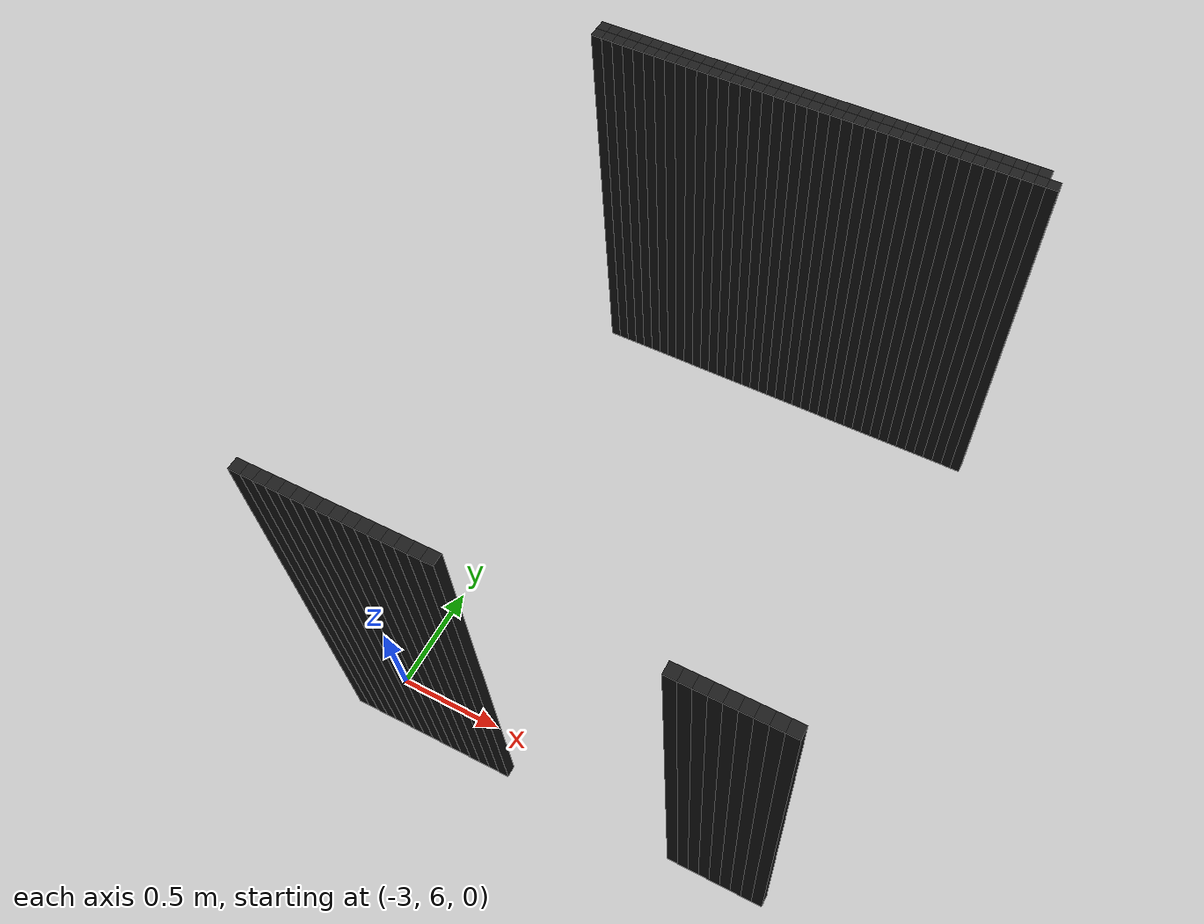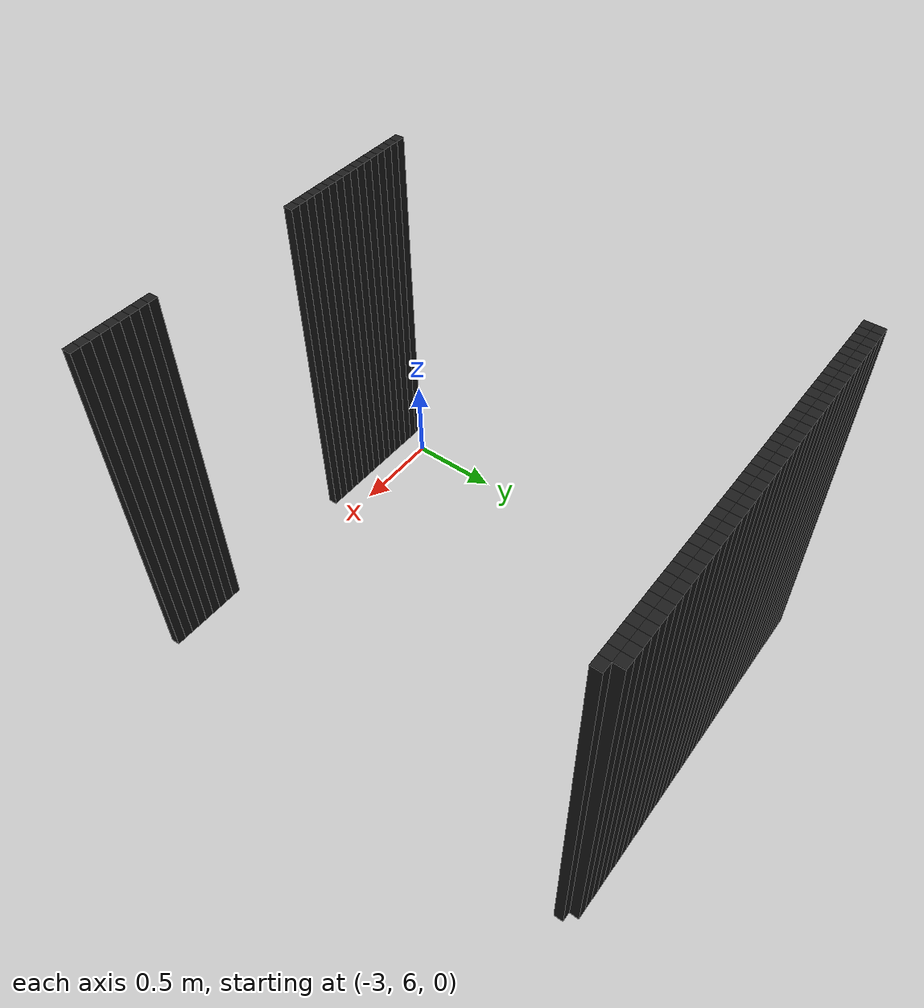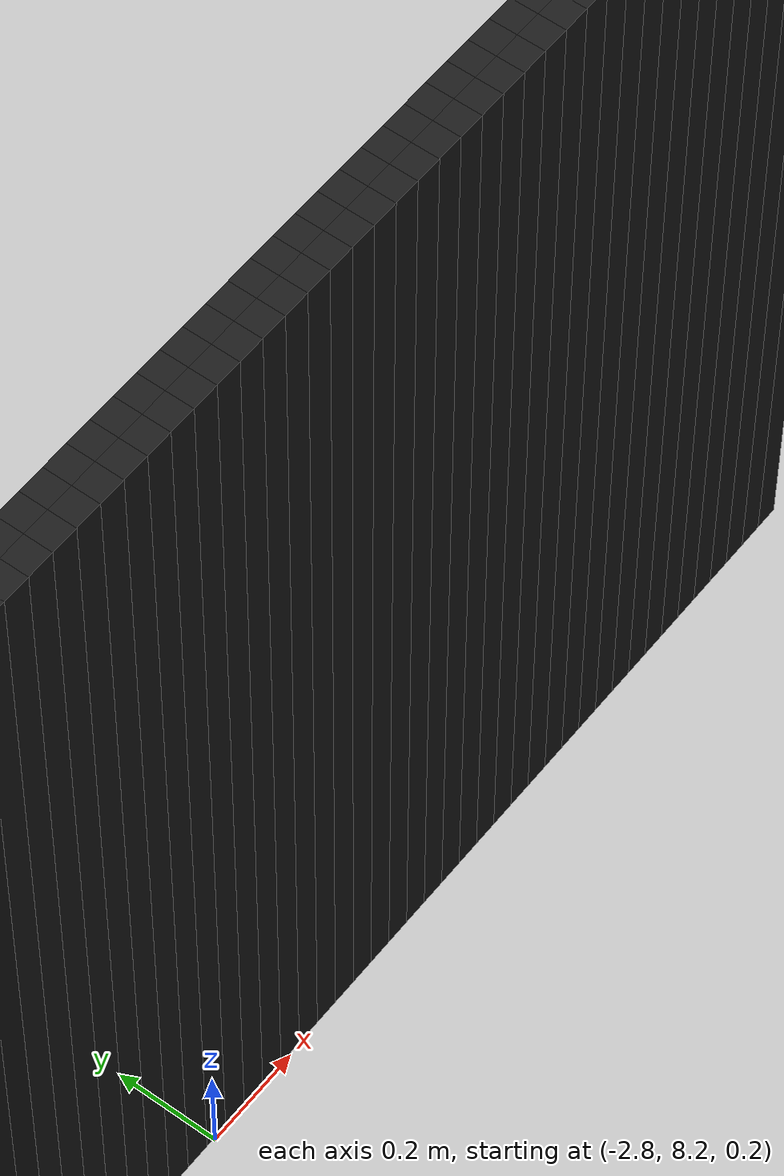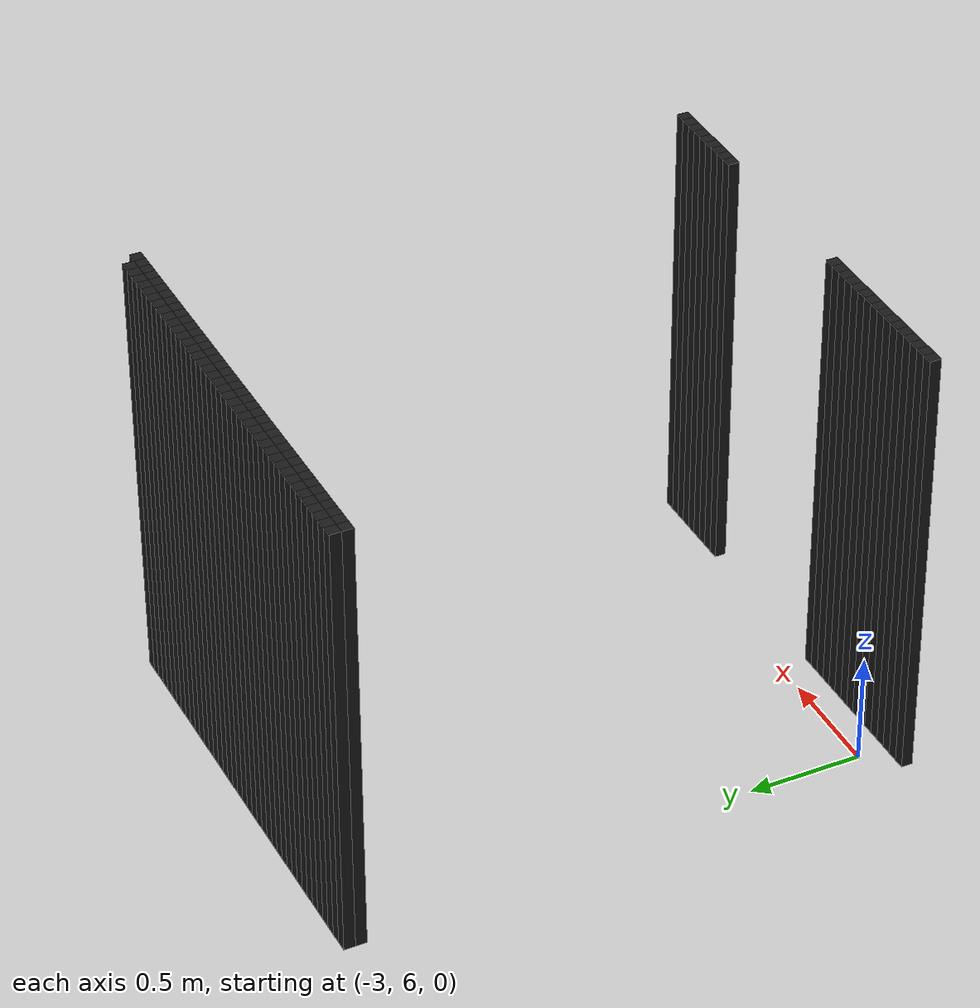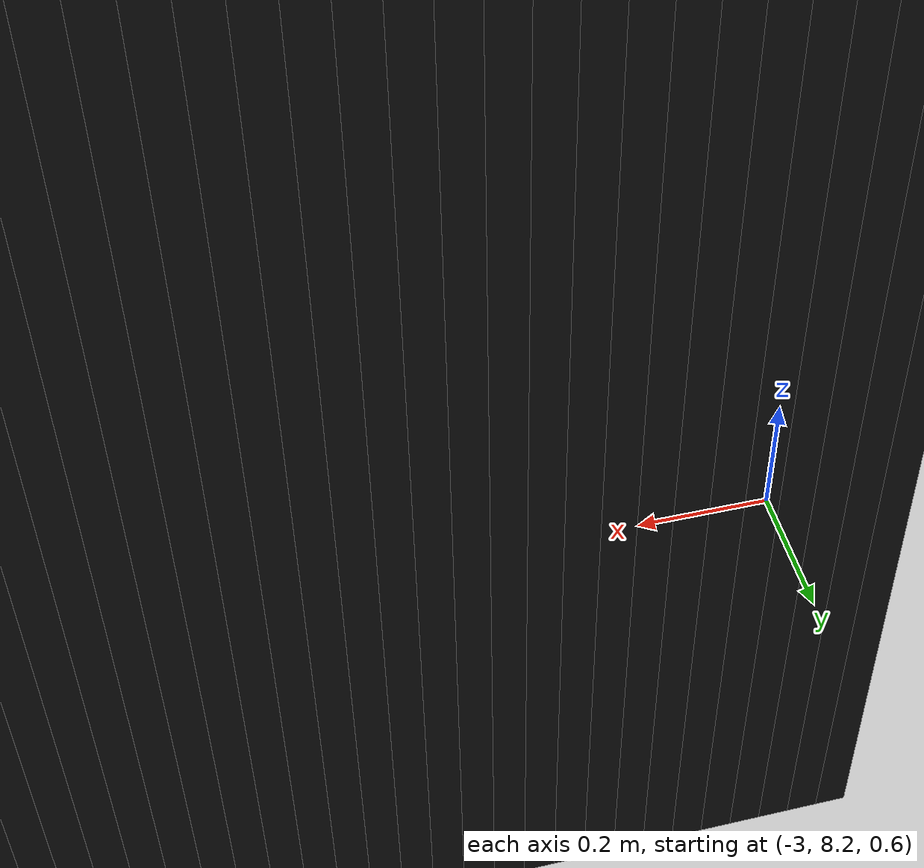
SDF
<sdf version="1.6">
 <model name="obstacle_28_0">
  <pose>-3.1099999999999994 8.350000000000001 1.0 0 0 0</pose>
  <static>true</static>
  <link name="box_link">
   <collision name="box_collision"><geometry><box><size>0.05 0.05 2.0</size></box></geometry></collision>
   <visual name="box_visual">
    <geometry><box><size>0.05 0.05 2.0</size></box></geometry>
    <material><ambient>0 0 0 1</ambient><diffuse>0.1 0.1 0.1 1</diffuse></material>
   </visual>
  </link>
 </model>
 <model name="obstacle_29_0">
  <pose>-3.0599999999999996 8.350000000000001 1.0 0 0 0</pose>
  <static>true</static>
  <link name="box_link">
   <collision name="box_collision"><geometry><box><size>0.05 0.05 2.0</size></box></geometry></collision>
   <visual name="box_visual">
    <geometry><box><size>0.05 0.05 2.0</size></box></geometry>
    <material><ambient>0 0 0 1</ambient><diffuse>0.1 0.1 0.1 1</diffuse></material>
   </visual>
  </link>
 </model>
 <model name="obstacle_30_0">
  <pose>-3.01 8.350000000000001 1.0 0 0 0</pose>
  <static>true</static>
  <link name="box_link">
   <collision name="box_collision"><geometry><box><size>0.05 0.05 2.0</size></box></geometry></collision>
   <visual name="box_visual">
    <geometry><box><size>0.05 0.05 2.0</size></box></geometry>
    <material><ambient>0 0 0 1</ambient><diffuse>0.1 0.1 0.1 1</diffuse></material>
   </visual>
  </link>
 </model>
 <model name="obstacle_31_0">
  <pose>-2.96 8.350000000000001 1.0 0 0 0</pose>
  <static>true</static>
  <link name="box_link">
   <collision name="box_collision"><geometry><box><size>0.05 0.05 2.0</size></box></geometry></collision>
   <visual name="box_visual">
    <geometry><box><size>0.05 0.05 2.0</size></box></geometry>
    <material><ambient>0 0 0 1</ambient><diffuse>0.1 0.1 0.1 1</diffuse></material>
   </visual>
  </link>
 </model>
 <model name="obstacle_32_0">
  <pose>-2.9099999999999997 8.350000000000001 1.0 0 0 0</pose>
  <static>true</static>
  <link name="box_link">
   <collision name="box_collision"><geometry><box><size>0.05 0.05 2.0</size></box></geometry></collision>
   <visual name="box_visual">
    <geometry><box><size>0.05 0.05 2.0</size></box></geometry>
    <material><ambient>0 0 0 1</ambient><diffuse>0.1 0.1 0.1 1</diffuse></material>
   </visual>
  </link>
 </model>
 <model name="obstacle_33_0">
  <pose>-2.8599999999999994 8.350000000000001 1.0 0 0 0</pose>
  <static>true</static>
  <link name="box_link">
   <collision name="box_collision"><geometry><box><size>0.05 0.05 2.0</size></box></geometry></collision>
   <visual name="box_visual">
    <geometry><box><size>0.05 0.05 2.0</size></box></geometry>
    <material><ambient>0 0 0 1</ambient><diffuse>0.1 0.1 0.1 1</diffuse></material>
   </visual>
  </link>
 </model>
 <model name="obstacle_34_0">
  <pose>-2.8099999999999996 8.350000000000001 1.0 0 0 0</pose>
  <static>true</static>
  <link name="box_link">
   <collision name="box_collision"><geometry><box><size>0.05 0.05 2.0</size></box></geometry></collision>
   <visual name="box_visual">
    <geometry><box><size>0.05 0.05 2.0</size></box></geometry>
    <material><ambient>0 0 0 1</ambient><diffuse>0.1 0.1 0.1 1</diffuse></material>
   </visual>
  </link>
 </model>
 <model name="obstacle_35_0">
  <pose>-2.76 8.350000000000001 1.0 0 0 0</pose>
  <static>true</static>
  <link name="box_link">
   <collision name="box_collision"><geometry><box><size>0.05 0.05 2.0</size></box></geometry></collision>
   <visual name="box_visual">
    <geometry><box><size>0.05 0.05 2.0</size></box></geometry>
    <material><ambient>0 0 0 1</ambient><diffuse>0.1 0.1 0.1 1</diffuse></material>
   </visual>
  </link>
 </model>
 <model name="obstacle_36_0">
  <pose>-2.71 8.350000000000001 1.0 0 0 0</pose>
  <static>true</static>
  <link name="box_link">
   <collision name="box_collision"><geometry><box><size>0.05 0.05 2.0</size></box></geometry></collision>
   <visual name="box_visual">
    <geometry><box><size>0.05 0.05 2.0</size></box></geometry>
    <material><ambient>0 0 0 1</ambient><diffuse>0.1 0.1 0.1 1</diffuse></material>
   </visual>
  </link>
 </model>
 <model name="obstacle_37_0">
  <pose>-2.6599999999999997 8.350000000000001 1.0 0 0 0</pose>
  <static>true</static>
  <link name="box_link">
   <collision name="box_collision"><geometry><box><size>0.05 0.05 2.0</size></box></geometry></collision>
   <visual name="box_visual">
    <geometry><box><size>0.05 0.05 2.0</size></box></geometry>
    <material><ambient>0 0 0 1</ambient><diffuse>0.1 0.1 0.1 1</diffuse></material>
   </visual>
  </link>
 </model>
 <model name="obstacle_38_0">
  <pose>-2.6099999999999994 8.350000000000001 1.0 0 0 0</pose>
  <static>true</static>
  <link name="box_link">
   <collision name="box_collision"><geometry><box><size>0.05 0.05 2.0</size></box></geometry></collision>
   <visual name="box_visual">
    <geometry><box><size>0.05 0.05 2.0</size></box></geometry>
    <material><ambient>0 0 0 1</ambient><diffuse>0.1 0.1 0.1 1</diffuse></material>
   </visual>
  </link>
 </model>
 <model name="obstacle_39_0">
  <pose>-2.5599999999999996 8.350000000000001 1.0 0 0 0</pose>
  <static>true</static>
  <link name="box_link">
   <collision name="box_collision"><geometry><box><size>0.05 0.05 2.0</size></box></geometry></collision>
   <visual name="box_visual">
    <geometry><box><size>0.05 0.05 2.0</size></box></geometry>
    <material><ambient>0 0 0 1</ambient><diffuse>0.1 0.1 0.1 1</diffuse></material>
   </visual>
  </link>
 </model>
 <model name="obstacle_40_0">
  <pose>-2.51 8.350000000000001 1.0 0 0 0</pose>
  <static>true</static>
  <link name="box_link">
   <collision name="box_collision"><geometry><box><size>0.05 0.05 2.0</size></box></geometry></collision>
   <visual name="box_visual">
    <geometry><box><size>0.05 0.05 2.0</size></box></geometry>
    <material><ambient>0 0 0 1</ambient><diffuse>0.1 0.1 0.1 1</diffuse></material>
   </visual>
  </link>
 </model>
 <model name="obstacle_41_0">
  <pose>-2.4599999999999995 8.350000000000001 1.0 0 0 0</pose>
  <static>true</static>
  <link name="box_link">
   <collision name="box_collision"><geometry><box><size>0.05 0.05 2.0</size></box></geometry></collision>
   <visual name="box_visual">
    <geometry><box><size>0.05 0.05 2.0</size></box></geometry>
    <material><ambient>0 0 0 1</ambient><diffuse>0.1 0.1 0.1 1</diffuse></material>
   </visual>
  </link>
 </model>
 <model name="obstacle_42_0">
  <pose>-2.4099999999999997 8.350000000000001 1.0 0 0 0</pose>
  <static>true</static>
  <link name="box_link">
   <collision name="box_collision"><geometry><box><size>0.05 0.05 2.0</size></box></geometry></collision>
   <visual name="box_visual">
    <geometry><box><size>0.05 0.05 2.0</size></box></geometry>
    <material><ambient>0 0 0 1</ambient><diffuse>0.1 0.1 0.1 1</diffuse></material>
   </visual>
  </link>
 </model>
 <model name="obstacle_43_0">
  <pose>-2.36 8.350000000000001 1.0 0 0 0</pose>
  <static>true</static>
  <link name="box_link">
   <collision name="box_collision"><geometry><box><size>0.05 0.05 2.0</size></box></geometry></collision>
   <visual name="box_visual">
    <geometry><box><size>0.05 0.05 2.0</size></box></geometry>
    <material><ambient>0 0 0 1</ambient><diffuse>0.1 0.1 0.1 1</diffuse></material>
   </visual>
  </link>
 </model>
 <model name="obstacle_44_0">
  <pose>-2.3099999999999996 8.350000000000001 1.0 0 0 0</pose>
  <static>true</static>
  <link name="box_link">
   <collision name="box_collision"><geometry><box><size>0.05 0.05 2.0</size></box></geometry></collision>
   <visual name="box_visual">
    <geometry><box><size>0.05 0.05 2.0</size></box></geometry>
    <material><ambient>0 0 0 1</ambient><diffuse>0.1 0.1 0.1 1</diffuse></material>
   </visual>
  </link>
 </model>
 <model name="obstacle_45_0">
  <pose>-2.26 8.350000000000001 1.0 0 0 0</pose>
  <static>true</static>
  <link name="box_link">
   <collision name="box_collision"><geometry><box><size>0.05 0.05 2.0</size></box></geometry></collision>
   <visual name="box_visual">
    <geometry><box><size>0.05 0.05 2.0</size></box></geometry>
    <material><ambient>0 0 0 1</ambient><diffuse>0.1 0.1 0.1 1</diffuse></material>
   </visual>
  </link>
 </model>
 <model name="obstacle_46_0">
  <pose>-2.2099999999999995 8.350000000000001 1.0 0 0 0</pose>
  <static>true</static>
  <link name="box_link">
   <collision name="box_collision"><geometry><box><size>0.05 0.05 2.0</size></box></geometry></collision>
   <visual name="box_visual">
    <geometry><box><size>0.05 0.05 2.0</size></box></geometry>
    <material><ambient>0 0 0 1</ambient><diffuse>0.1 0.1 0.1 1</diffuse></material>
   </visual>
  </link>
 </model>
 <model name="obstacle_47_0">
  <pose>-2.1599999999999997 8.350000000000001 1.0 0 0 0</pose>
  <static>true</static>
  <link name="box_link">
   <collision name="box_collision"><geometry><box><size>0.05 0.05 2.0</size></box></geometry></collision>
   <visual name="box_visual">
    <geometry><box><size>0.05 0.05 2.0</size></box></geometry>
    <material><ambient>0 0 0 1</ambient><diffuse>0.1 0.1 0.1 1</diffuse></material>
   </visual>
  </link>
 </model>
 <model name="obstacle_48_0">
  <pose>-2.1099999999999994 8.350000000000001 1.0 0 0 0</pose>
  <static>true</static>
  <link name="box_link">
   <collision name="box_collision"><geometry><box><size>0.05 0.05 2.0</size></box></geometry></collision>
   <visual name="box_visual">
    <geometry><box><size>0.05 0.05 2.0</size></box></geometry>
    <material><ambient>0 0 0 1</ambient><diffuse>0.1 0.1 0.1 1</diffuse></material>
   </visual>
  </link>
 </model>
 <model name="obstacle_49_0">
  <pose>-2.0599999999999996 8.350000000000001 1.0 0 0 0</pose>
  <static>true</static>
  <link name="box_link">
   <collision name="box_collision"><geometry><box><size>0.05 0.05 2.0</size></box></geometry></collision>
   <visual name="box_visual">
    <geometry><box><size>0.05 0.05 2.0</size></box></geometry>
    <material><ambient>0 0 0 1</ambient><diffuse>0.1 0.1 0.1 1</diffuse></material>
   </visual>
  </link>
 </model>
 <model name="obstacle_50_0">
  <pose>-2.01 8.350000000000001 1.0 0 0 0</pose>
  <static>true</static>
  <link name="box_link">
   <collision name="box_collision"><geometry><box><size>0.05 0.05 2.0</size></box></geometry></collision>
   <visual name="box_visual">
    <geometry><box><size>0.05 0.05 2.0</size></box></geometry>
    <material><ambient>0 0 0 1</ambient><diffuse>0.1 0.1 0.1 1</diffuse></material>
   </visual>
  </link>
 </model>
 <model name="obstacle_51_0">
  <pose>-1.9599999999999995 8.350000000000001 1.0 0 0 0</pose>
  <static>true</static>
  <link name="box_link">
   <collision name="box_collision"><geometry><box><size>0.05 0.05 2.0</size></box></geometry></collision>
   <visual name="box_visual">
    <geometry><box><size>0.05 0.05 2.0</size></box></geometry>
    <material><ambient>0 0 0 1</ambient><diffuse>0.1 0.1 0.1 1</diffuse></material>
   </visual>
  </link>
 </model>
 <model name="obstacle_52_0">
  <pose>-1.9099999999999997 8.350000000000001 1.0 0 0 0</pose>
  <static>true</static>
  <link name="box_link">
   <collision name="box_collision"><geometry><box><size>0.05 0.05 2.0</size></box></geometry></collision>
   <visual name="box_visual">
    <geometry><box><size>0.05 0.05 2.0</size></box></geometry>
    <material><ambient>0 0 0 1</ambient><diffuse>0.1 0.1 0.1 1</diffuse></material>
   </visual>
  </link>
 </model>
 <model name="obstacle_53_0">
  <pose>-1.8599999999999994 8.350000000000001 1.0 0 0 0</pose>
  <static>true</static>
  <link name="box_link">
   <collision name="box_collision"><geometry><box><size>0.05 0.05 2.0</size></box></geometry></collision>
   <visual name="box_visual">
    <geometry><box><size>0.05 0.05 2.0</size></box></geometry>
    <material><ambient>0 0 0 1</ambient><diffuse>0.1 0.1 0.1 1</diffuse></material>
   </visual>
  </link>
 </model>
 <model name="obstacle_54_0">
  <pose>-1.8099999999999996 8.350000000000001 1.0 0 0 0</pose>
  <static>true</static>
  <link name="box_link">
   <collision name="box_collision"><geometry><box><size>0.05 0.05 2.0</size></box></geometry></collision>
   <visual name="box_visual">
    <geometry><box><size>0.05 0.05 2.0</size></box></geometry>
    <material><ambient>0 0 0 1</ambient><diffuse>0.1 0.1 0.1 1</diffuse></material>
   </visual>
  </link>
 </model>
 <model name="obstacle_55_0">
  <pose>-1.7599999999999998 8.350000000000001 1.0 0 0 0</pose>
  <static>true</static>
  <link name="box_link">
   <collision name="box_collision"><geometry><box><size>0.05 0.05 2.0</size></box></geometry></collision>
   <visual name="box_visual">
    <geometry><box><size>0.05 0.05 2.0</size></box></geometry>
    <material><ambient>0 0 0 1</ambient><diffuse>0.1 0.1 0.1 1</diffuse></material>
   </visual>
  </link>
 </model>
 <model name="obstacle_56_0">
  <pose>-1.7099999999999995 8.350000000000001 1.0 0 0 0</pose>
  <static>true</static>
  <link name="box_link">
   <collision name="box_collision"><geometry><box><size>0.05 0.05 2.0</size></box></geometry></collision>
   <visual name="box_visual">
    <geometry><box><size>0.05 0.05 2.0</size></box></geometry>
    <material><ambient>0 0 0 1</ambient><diffuse>0.1 0.1 0.1 1</diffuse></material>
   </visual>
  </link>
 </model>
 <model name="obstacle_57_0">
  <pose>-1.6599999999999997 8.350000000000001 1.0 0 0 0</pose>
  <static>true</static>
  <link name="box_link">
   <collision name="box_collision"><geometry><box><size>0.05 0.05 2.0</size></box></geometry></collision>
   <visual name="box_visual">
    <geometry><box><size>0.05 0.05 2.0</size></box></geometry>
    <material><ambient>0 0 0 1</ambient><diffuse>0.1 0.1 0.1 1</diffuse></material>
   </visual>
  </link>
 </model>
 <model name="obstacle_58_0">
  <pose>-1.6099999999999994 8.350000000000001 1.0 0 0 0</pose>
  <static>true</static>
  <link name="box_link">
   <collision name="box_collision"><geometry><box><size>0.05 0.05 2.0</size></box></geometry></collision>
   <visual name="box_visual">
    <geometry><box><size>0.05 0.05 2.0</size></box></geometry>
    <material><ambient>0 0 0 1</ambient><diffuse>0.1 0.1 0.1 1</diffuse></material>
   </visual>
  </link>
 </model>
 <model name="obstacle_59_0">
  <pose>-1.5599999999999996 8.350000000000001 1.0 0 0 0</pose>
  <static>true</static>
  <link name="box_link">
   <collision name="box_collision"><geometry><box><size>0.05 0.05 2.0</size></box></geometry></collision>
   <visual name="box_visual">
    <geometry><box><size>0.05 0.05 2.0</size></box></geometry>
    <material><ambient>0 0 0 1</ambient><diffuse>0.1 0.1 0.1 1</diffuse></material>
   </visual>
  </link>
 </model>
 <model name="obstacle_60_0">
  <pose>-1.5099999999999998 8.350000000000001 1.0 0 0 0</pose>
  <static>true</static>
  <link name="box_link">
   <collision name="box_collision"><geometry><box><size>0.05 0.05 2.0</size></box></geometry></collision>
   <visual name="box_visual">
    <geometry><box><size>0.05 0.05 2.0</size></box></geometry>
    <material><ambient>0 0 0 1</ambient><diffuse>0.1 0.1 0.1 1</diffuse></material>
   </visual>
  </link>
 </model>
 <model name="obstacle_61_0">
  <pose>-1.4599999999999995 8.350000000000001 1.0 0 0 0</pose>
  <static>true</static>
  <link name="box_link">
   <collision name="box_collision"><geometry><box><size>0.05 0.05 2.0</size></box></geometry></collision>
   <visual name="box_visual">
    <geometry><box><size>0.05 0.05 2.0</size></box></geometry>
    <material><ambient>0 0 0 1</ambient><diffuse>0.1 0.1 0.1 1</diffuse></material>
   </visual>
  </link>
 </model>
 <model name="obstacle_62_0">
  <pose>-1.4099999999999997 8.350000000000001 1.0 0 0 0</pose>
  <static>true</static>
  <link name="box_link">
   <collision name="box_collision"><geometry><box><size>0.05 0.05 2.0</size></box></geometry></collision>
   <visual name="box_visual">
    <geometry><box><size>0.05 0.05 2.0</size></box></geometry>
    <material><ambient>0 0 0 1</ambient><diffuse>0.1 0.1 0.1 1</diffuse></material>
   </visual>
  </link>
 </model>
 <model name="obstacle_63_0">
  <pose>-1.3599999999999994 8.350000000000001 1.0 0 0 0</pose>
  <static>true</static>
  <link name="box_link">
   <collision name="box_collision"><geometry><box><size>0.05 0.05 2.0</size></box></geometry></collision>
   <visual name="box_visual">
    <geometry><box><size>0.05 0.05 2.0</size></box></geometry>
    <material><ambient>0 0 0 1</ambient><diffuse>0.1 0.1 0.1 1</diffuse></material>
   </visual>
  </link>
 </model>
 <model name="obstacle_64_0">
  <pose>-1.3099999999999996 8.350000000000001 1.0 0 0 0</pose>
  <static>true</static>
  <link name="box_link">
   <collision name="box_collision"><geometry><box><size>0.05 0.05 2.0</size></box></geometry></collision>
   <visual name="box_visual">
    <geometry><box><size>0.05 0.05 2.0</size></box></geometry>
    <material><ambient>0 0 0 1</ambient><diffuse>0.1 0.1 0.1 1</diffuse></material>
   </visual>
  </link>
 </model>
 <model name="obstacle_65_0">
  <pose>-1.2599999999999998 8.350000000000001 1.0 0 0 0</pose>
  <static>true</static>
  <link name="box_link">
   <collision name="box_collision"><geometry><box><size>0.05 0.05 2.0</size></box></geometry></collision>
   <visual name="box_visual">
    <geometry><box><size>0.05 0.05 2.0</size></box></geometry>
    <material><ambient>0 0 0 1</ambient><diffuse>0.1 0.1 0.1 1</diffuse></material>
   </visual>
  </link>
 </model>
 <model name="obstacle_66_0">
  <pose>-1.2099999999999995 8.350000000000001 1.0 0 0 0</pose>
  <static>true</static>
  <link name="box_link">
   <collision name="box_collision"><geometry><box><size>0.05 0.05 2.0</size></box></geometry></collision>
   <visual name="box_visual">
    <geometry><box><size>0.05 0.05 2.0</size></box></geometry>
    <material><ambient>0 0 0 1</ambient><diffuse>0.1 0.1 0.1 1</diffuse></material>
   </visual>
  </link>
 </model>
 <model name="obstacle_67_0">
  <pose>-1.1599999999999997 8.350000000000001 1.0 0 0 0</pose>
  <static>true</static>
  <link name="box_link">
   <collision name="box_collision"><geometry><box><size>0.05 0.05 2.0</size></box></geometry></collision>
   <visual name="box_visual">
    <geometry><box><size>0.05 0.05 2.0</size></box></geometry>
    <material><ambient>0 0 0 1</ambient><diffuse>0.1 0.1 0.1 1</diffuse></material>
   </visual>
  </link>
 </model>
 <model name="obstacle_28_1">
  <pose>-3.1099999999999994 8.3 1.0 0 0 0</pose>
  <static>true</static>
  <link name="box_link">
   <collision name="box_collision"><geometry><box><size>0.05 0.05 2.0</size></box></geometry></collision>
   <visual name="box_visual">
    <geometry><box><size>0.05 0.05 2.0</size></box></geometry>
    <material><ambient>0 0 0 1</ambient><diffuse>0.1 0.1 0.1 1</diffuse></material>
   </visual>
  </link>
 </model>
 <model name="obstacle_29_1">
  <pose>-3.0599999999999996 8.3 1.0 0 0 0</pose>
  <static>true</static>
  <link name="box_link">
   <collision name="box_collision"><geometry><box><size>0.05 0.05 2.0</size></box></geometry></collision>
   <visual name="box_visual">
    <geometry><box><size>0.05 0.05 2.0</size></box></geometry>
    <material><ambient>0 0 0 1</ambient><diffuse>0.1 0.1 0.1 1</diffuse></material>
   </visual>
  </link>
 </model>
 <model name="obstacle_30_1">
  <pose>-3.01 8.3 1.0 0 0 0</pose>
  <static>true</static>
  <link name="box_link">
   <collision name="box_collision"><geometry><box><size>0.05 0.05 2.0</size></box></geometry></collision>
   <visual name="box_visual">
    <geometry><box><size>0.05 0.05 2.0</size></box></geometry>
    <material><ambient>0 0 0 1</ambient><diffuse>0.1 0.1 0.1 1</diffuse></material>
   </visual>
  </link>
 </model>
 <model name="obstacle_31_1">
  <pose>-2.96 8.3 1.0 0 0 0</pose>
  <static>true</static>
  <link name="box_link">
   <collision name="box_collision"><geometry><box><size>0.05 0.05 2.0</size></box></geometry></collision>
   <visual name="box_visual">
    <geometry><box><size>0.05 0.05 2.0</size></box></geometry>
    <material><ambient>0 0 0 1</ambient><diffuse>0.1 0.1 0.1 1</diffuse></material>
   </visual>
  </link>
 </model>
 <model name="obstacle_32_1">
  <pose>-2.9099999999999997 8.3 1.0 0 0 0</pose>
  <static>true</static>
  <link name="box_link">
   <collision name="box_collision"><geometry><box><size>0.05 0.05 2.0</size></box></geometry></collision>
   <visual name="box_visual">
    <geometry><box><size>0.05 0.05 2.0</size></box></geometry>
    <material><ambient>0 0 0 1</ambient><diffuse>0.1 0.1 0.1 1</diffuse></material>
   </visual>
  </link>
 </model>
 <model name="obstacle_33_1">
  <pose>-2.8599999999999994 8.3 1.0 0 0 0</pose>
  <static>true</static>
  <link name="box_link">
   <collision name="box_collision"><geometry><box><size>0.05 0.05 2.0</size></box></geometry></collision>
   <visual name="box_visual">
    <geometry><box><size>0.05 0.05 2.0</size></box></geometry>
    <material><ambient>0 0 0 1</ambient><diffuse>0.1 0.1 0.1 1</diffuse></material>
   </visual>
  </link>
 </model>
 <model name="obstacle_34_1">
  <pose>-2.8099999999999996 8.3 1.0 0 0 0</pose>
  <static>true</static>
  <link name="box_link">
   <collision name="box_collision"><geometry><box><size>0.05 0.05 2.0</size></box></geometry></collision>
   <visual name="box_visual">
    <geometry><box><size>0.05 0.05 2.0</size></box></geometry>
    <material><ambient>0 0 0 1</ambient><diffuse>0.1 0.1 0.1 1</diffuse></material>
   </visual>
  </link>
 </model>
 <model name="obstacle_35_1">
  <pose>-2.76 8.3 1.0 0 0 0</pose>
  <static>true</static>
  <link name="box_link">
   <collision name="box_collision"><geometry><box><size>0.05 0.05 2.0</size></box></geometry></collision>
   <visual name="box_visual">
    <geometry><box><size>0.05 0.05 2.0</size></box></geometry>
    <material><ambient>0 0 0 1</ambient><diffuse>0.1 0.1 0.1 1</diffuse></material>
   </visual>
  </link>
 </model>
 <model name="obstacle_36_1">
  <pose>-2.71 8.3 1.0 0 0 0</pose>
  <static>true</static>
  <link name="box_link">
   <collision name="box_collision"><geometry><box><size>0.05 0.05 2.0</size></box></geometry></collision>
   <visual name="box_visual">
    <geometry><box><size>0.05 0.05 2.0</size></box></geometry>
    <material><ambient>0 0 0 1</ambient><diffuse>0.1 0.1 0.1 1</diffuse></material>
   </visual>
  </link>
 </model>
 <model name="obstacle_37_1">
  <pose>-2.6599999999999997 8.3 1.0 0 0 0</pose>
  <static>true</static>
  <link name="box_link">
   <collision name="box_collision"><geometry><box><size>0.05 0.05 2.0</size></box></geometry></collision>
   <visual name="box_visual">
    <geometry><box><size>0.05 0.05 2.0</size></box></geometry>
    <material><ambient>0 0 0 1</ambient><diffuse>0.1 0.1 0.1 1</diffuse></material>
   </visual>
  </link>
 </model>
 <model name="obstacle_38_1">
  <pose>-2.6099999999999994 8.3 1.0 0 0 0</pose>
  <static>true</static>
  <link name="box_link">
   <collision name="box_collision"><geometry><box><size>0.05 0.05 2.0</size></box></geometry></collision>
   <visual name="box_visual">
    <geometry><box><size>0.05 0.05 2.0</size></box></geometry>
    <material><ambient>0 0 0 1</ambient><diffuse>0.1 0.1 0.1 1</diffuse></material>
   </visual>
  </link>
 </model>
 <model name="obstacle_39_1">
  <pose>-2.5599999999999996 8.3 1.0 0 0 0</pose>
  <static>true</static>
  <link name="box_link">
   <collision name="box_collision"><geometry><box><size>0.05 0.05 2.0</size></box></geometry></collision>
   <visual name="box_visual">
    <geometry><box><size>0.05 0.05 2.0</size></box></geometry>
    <material><ambient>0 0 0 1</ambient><diffuse>0.1 0.1 0.1 1</diffuse></material>
   </visual>
  </link>
 </model>
 <model name="obstacle_40_1">
  <pose>-2.51 8.3 1.0 0 0 0</pose>
  <static>true</static>
  <link name="box_link">
   <collision name="box_collision"><geometry><box><size>0.05 0.05 2.0</size></box></geometry></collision>
   <visual name="box_visual">
    <geometry><box><size>0.05 0.05 2.0</size></box></geometry>
    <material><ambient>0 0 0 1</ambient><diffuse>0.1 0.1 0.1 1</diffuse></material>
   </visual>
  </link>
 </model>
 <model name="obstacle_41_1">
  <pose>-2.4599999999999995 8.3 1.0 0 0 0</pose>
  <static>true</static>
  <link name="box_link">
   <collision name="box_collision"><geometry><box><size>0.05 0.05 2.0</size></box></geometry></collision>
   <visual name="box_visual">
    <geometry><box><size>0.05 0.05 2.0</size></box></geometry>
    <material><ambient>0 0 0 1</ambient><diffuse>0.1 0.1 0.1 1</diffuse></material>
   </visual>
  </link>
 </model>
 <model name="obstacle_42_1">
  <pose>-2.4099999999999997 8.3 1.0 0 0 0</pose>
  <static>true</static>
  <link name="box_link">
   <collision name="box_collision"><geometry><box><size>0.05 0.05 2.0</size></box></geometry></collision>
   <visual name="box_visual">
    <geometry><box><size>0.05 0.05 2.0</size></box></geometry>
    <material><ambient>0 0 0 1</ambient><diffuse>0.1 0.1 0.1 1</diffuse></material>
   </visual>
  </link>
 </model>
 <model name="obstacle_43_1">
  <pose>-2.36 8.3 1.0 0 0 0</pose>
  <static>true</static>
  <link name="box_link">
   <collision name="box_collision"><geometry><box><size>0.05 0.05 2.0</size></box></geometry></collision>
   <visual name="box_visual">
    <geometry><box><size>0.05 0.05 2.0</size></box></geometry>
    <material><ambient>0 0 0 1</ambient><diffuse>0.1 0.1 0.1 1</diffuse></material>
   </visual>
  </link>
 </model>
 <model name="obstacle_44_1">
  <pose>-2.3099999999999996 8.3 1.0 0 0 0</pose>
  <static>true</static>
  <link name="box_link">
   <collision name="box_collision"><geometry><box><size>0.05 0.05 2.0</size></box></geometry></collision>
   <visual name="box_visual">
    <geometry><box><size>0.05 0.05 2.0</size></box></geometry>
    <material><ambient>0 0 0 1</ambient><diffuse>0.1 0.1 0.1 1</diffuse></material>
   </visual>
  </link>
 </model>
 <model name="obstacle_45_1">
  <pose>-2.26 8.3 1.0 0 0 0</pose>
  <static>true</static>
  <link name="box_link">
   <collision name="box_collision"><geometry><box><size>0.05 0.05 2.0</size></box></geometry></collision>
   <visual name="box_visual">
    <geometry><box><size>0.05 0.05 2.0</size></box></geometry>
    <material><ambient>0 0 0 1</ambient><diffuse>0.1 0.1 0.1 1</diffuse></material>
   </visual>
  </link>
 </model>
 <model name="obstacle_46_1">
  <pose>-2.2099999999999995 8.3 1.0 0 0 0</pose>
  <static>true</static>
  <link name="box_link">
   <collision name="box_collision"><geometry><box><size>0.05 0.05 2.0</size></box></geometry></collision>
   <visual name="box_visual">
    <geometry><box><size>0.05 0.05 2.0</size></box></geometry>
    <material><ambient>0 0 0 1</ambient><diffuse>0.1 0.1 0.1 1</diffuse></material>
   </visual>
  </link>
 </model>
 <model name="obstacle_47_1">
  <pose>-2.1599999999999997 8.3 1.0 0 0 0</pose>
  <static>true</static>
  <link name="box_link">
   <collision name="box_collision"><geometry><box><size>0.05 0.05 2.0</size></box></geometry></collision>
   <visual name="box_visual">
    <geometry><box><size>0.05 0.05 2.0</size></box></geometry>
    <material><ambient>0 0 0 1</ambient><diffuse>0.1 0.1 0.1 1</diffuse></material>
   </visual>
  </link>
 </model>
 <model name="obstacle_48_1">
  <pose>-2.1099999999999994 8.3 1.0 0 0 0</pose>
  <static>true</static>
  <link name="box_link">
   <collision name="box_collision"><geometry><box><size>0.05 0.05 2.0</size></box></geometry></collision>
   <visual name="box_visual">
    <geometry><box><size>0.05 0.05 2.0</size></box></geometry>
    <material><ambient>0 0 0 1</ambient><diffuse>0.1 0.1 0.1 1</diffuse></material>
   </visual>
  </link>
 </model>
 <model name="obstacle_49_1">
  <pose>-2.0599999999999996 8.3 1.0 0 0 0</pose>
  <static>true</static>
  <link name="box_link">
   <collision name="box_collision"><geometry><box><size>0.05 0.05 2.0</size></box></geometry></collision>
   <visual name="box_visual">
    <geometry><box><size>0.05 0.05 2.0</size></box></geometry>
    <material><ambient>0 0 0 1</ambient><diffuse>0.1 0.1 0.1 1</diffuse></material>
   </visual>
  </link>
 </model>
 <model name="obstacle_50_1">
  <pose>-2.01 8.3 1.0 0 0 0</pose>
  <static>true</static>
  <link name="box_link">
   <collision name="box_collision"><geometry><box><size>0.05 0.05 2.0</size></box></geometry></collision>
   <visual name="box_visual">
    <geometry><box><size>0.05 0.05 2.0</size></box></geometry>
    <material><ambient>0 0 0 1</ambient><diffuse>0.1 0.1 0.1 1</diffuse></material>
   </visual>
  </link>
 </model>
 <model name="obstacle_51_1">
  <pose>-1.9599999999999995 8.3 1.0 0 0 0</pose>
  <static>true</static>
  <link name="box_link">
   <collision name="box_collision"><geometry><box><size>0.05 0.05 2.0</size></box></geometry></collision>
   <visual name="box_visual">
    <geometry><box><size>0.05 0.05 2.0</size></box></geometry>
    <material><ambient>0 0 0 1</ambient><diffuse>0.1 0.1 0.1 1</diffuse></material>
   </visual>
  </link>
 </model>
 <model name="obstacle_52_1">
  <pose>-1.9099999999999997 8.3 1.0 0 0 0</pose>
  <static>true</static>
  <link name="box_link">
   <collision name="box_collision"><geometry><box><size>0.05 0.05 2.0</size></box></geometry></collision>
   <visual name="box_visual">
    <geometry><box><size>0.05 0.05 2.0</size></box></geometry>
    <material><ambient>0 0 0 1</ambient><diffuse>0.1 0.1 0.1 1</diffuse></material>
   </visual>
  </link>
 </model>
 <model name="obstacle_53_1">
  <pose>-1.8599999999999994 8.3 1.0 0 0 0</pose>
  <static>true</static>
  <link name="box_link">
   <collision name="box_collision"><geometry><box><size>0.05 0.05 2.0</size></box></geometry></collision>
   <visual name="box_visual">
    <geometry><box><size>0.05 0.05 2.0</size></box></geometry>
    <material><ambient>0 0 0 1</ambient><diffuse>0.1 0.1 0.1 1</diffuse></material>
   </visual>
  </link>
 </model>
 <model name="obstacle_54_1">
  <pose>-1.8099999999999996 8.3 1.0 0 0 0</pose>
  <static>true</static>
  <link name="box_link">
   <collision name="box_collision"><geometry><box><size>0.05 0.05 2.0</size></box></geometry></collision>
   <visual name="box_visual">
    <geometry><box><size>0.05 0.05 2.0</size></box></geometry>
    <material><ambient>0 0 0 1</ambient><diffuse>0.1 0.1 0.1 1</diffuse></material>
   </visual>
  </link>
 </model>
 <model name="obstacle_55_1">
  <pose>-1.7599999999999998 8.3 1.0 0 0 0</pose>
  <static>true</static>
  <link name="box_link">
   <collision name="box_collision"><geometry><box><size>0.05 0.05 2.0</size></box></geometry></collision>
   <visual name="box_visual">
    <geometry><box><size>0.05 0.05 2.0</size></box></geometry>
    <material><ambient>0 0 0 1</ambient><diffuse>0.1 0.1 0.1 1</diffuse></material>
   </visual>
  </link>
 </model>
 <model name="obstacle_56_1">
  <pose>-1.7099999999999995 8.3 1.0 0 0 0</pose>
  <static>true</static>
  <link name="box_link">
   <collision name="box_collision"><geometry><box><size>0.05 0.05 2.0</size></box></geometry></collision>
   <visual name="box_visual">
    <geometry><box><size>0.05 0.05 2.0</size></box></geometry>
    <material><ambient>0 0 0 1</ambient><diffuse>0.1 0.1 0.1 1</diffuse></material>
   </visual>
  </link>
 </model>
 <model name="obstacle_57_1">
  <pose>-1.6599999999999997 8.3 1.0 0 0 0</pose>
  <static>true</static>
  <link name="box_link">
   <collision name="box_collision"><geometry><box><size>0.05 0.05 2.0</size></box></geometry></collision>
   <visual name="box_visual">
    <geometry><box><size>0.05 0.05 2.0</size></box></geometry>
    <material><ambient>0 0 0 1</ambient><diffuse>0.1 0.1 0.1 1</diffuse></material>
   </visual>
  </link>
 </model>
 <model name="obstacle_58_1">
  <pose>-1.6099999999999994 8.3 1.0 0 0 0</pose>
  <static>true</static>
  <link name="box_link">
   <collision name="box_collision"><geometry><box><size>0.05 0.05 2.0</size></box></geometry></collision>
   <visual name="box_visual">
    <geometry><box><size>0.05 0.05 2.0</size></box></geometry>
    <material><ambient>0 0 0 1</ambient><diffuse>0.1 0.1 0.1 1</diffuse></material>
   </visual>
  </link>
 </model>
 <model name="obstacle_59_1">
  <pose>-1.5599999999999996 8.3 1.0 0 0 0</pose>
  <static>true</static>
  <link name="box_link">
   <collision name="box_collision"><geometry><box><size>0.05 0.05 2.0</size></box></geometry></collision>
   <visual name="box_visual">
    <geometry><box><size>0.05 0.05 2.0</size></box></geometry>
    <material><ambient>0 0 0 1</ambient><diffuse>0.1 0.1 0.1 1</diffuse></material>
   </visual>
  </link>
 </model>
 <model name="obstacle_60_1">
  <pose>-1.5099999999999998 8.3 1.0 0 0 0</pose>
  <static>true</static>
  <link name="box_link">
   <collision name="box_collision"><geometry><box><size>0.05 0.05 2.0</size></box></geometry></collision>
   <visual name="box_visual">
    <geometry><box><size>0.05 0.05 2.0</size></box></geometry>
    <material><ambient>0 0 0 1</ambient><diffuse>0.1 0.1 0.1 1</diffuse></material>
   </visual>
  </link>
 </model>
 <model name="obstacle_61_1">
  <pose>-1.4599999999999995 8.3 1.0 0 0 0</pose>
  <static>true</static>
  <link name="box_link">
   <collision name="box_collision"><geometry><box><size>0.05 0.05 2.0</size></box></geometry></collision>
   <visual name="box_visual">
    <geometry><box><size>0.05 0.05 2.0</size></box></geometry>
    <material><ambient>0 0 0 1</ambient><diffuse>0.1 0.1 0.1 1</diffuse></material>
   </visual>
  </link>
 </model>
 <model name="obstacle_62_1">
  <pose>-1.4099999999999997 8.3 1.0 0 0 0</pose>
  <static>true</static>
  <link name="box_link">
   <collision name="box_collision"><geometry><box><size>0.05 0.05 2.0</size></box></geometry></collision>
   <visual name="box_visual">
    <geometry><box><size>0.05 0.05 2.0</size></box></geometry>
    <material><ambient>0 0 0 1</ambient><diffuse>0.1 0.1 0.1 1</diffuse></material>
   </visual>
  </link>
 </model>
 <model name="obstacle_63_1">
  <pose>-1.3599999999999994 8.3 1.0 0 0 0</pose>
  <static>true</static>
  <link name="box_link">
   <collision name="box_collision"><geometry><box><size>0.05 0.05 2.0</size></box></geometry></collision>
   <visual name="box_visual">
    <geometry><box><size>0.05 0.05 2.0</size></box></geometry>
    <material><ambient>0 0 0 1</ambient><diffuse>0.1 0.1 0.1 1</diffuse></material>
   </visual>
  </link>
 </model>
 <model name="obstacle_64_1">
  <pose>-1.3099999999999996 8.3 1.0 0 0 0</pose>
  <static>true</static>
  <link name="box_link">
   <collision name="box_collision"><geometry><box><size>0.05 0.05 2.0</size></box></geometry></collision>
   <visual name="box_visual">
    <geometry><box><size>0.05 0.05 2.0</size></box></geometry>
    <material><ambient>0 0 0 1</ambient><diffuse>0.1 0.1 0.1 1</diffuse></material>
   </visual>
  </link>
 </model>
 <model name="obstacle_65_1">
  <pose>-1.2599999999999998 8.3 1.0 0 0 0</pose>
  <static>true</static>
  <link name="box_link">
   <collision name="box_collision"><geometry><box><size>0.05 0.05 2.0</size></box></geometry></collision>
   <visual name="box_visual">
    <geometry><box><size>0.05 0.05 2.0</size></box></geometry>
    <material><ambient>0 0 0 1</ambient><diffuse>0.1 0.1 0.1 1</diffuse></material>
   </visual>
  </link>
 </model>
 <model name="obstacle_66_1">
  <pose>-1.2099999999999995 8.3 1.0 0 0 0</pose>
  <static>true</static>
  <link name="box_link">
   <collision name="box_collision"><geometry><box><size>0.05 0.05 2.0</size></box></geometry></collision>
   <visual name="box_visual">
    <geometry><box><size>0.05 0.05 2.0</size></box></geometry>
    <material><ambient>0 0 0 1</ambient><diffuse>0.1 0.1 0.1 1</diffuse></material>
   </visual>
  </link>
 </model>
 <model name="obstacle_67_1">
  <pose>-1.1599999999999997 8.3 1.0 0 0 0</pose>
  <static>true</static>
  <link name="box_link">
   <collision name="box_collision"><geometry><box><size>0.05 0.05 2.0</size></box></geometry></collision>
   <visual name="box_visual">
    <geometry><box><size>0.05 0.05 2.0</size></box></geometry>
    <material><ambient>0 0 0 1</ambient><diffuse>0.1 0.1 0.1 1</diffuse></material>
   </visual>
  </link>
 </model>
 <model name="obstacle_68_1">
  <pose>-1.1099999999999994 8.3 1.0 0 0 0</pose>
  <static>true</static>
  <link name="box_link">
   <collision name="box_collision"><geometry><box><size>0.05 0.05 2.0</size></box></geometry></collision>
   <visual name="box_visual">
    <geometry><box><size>0.05 0.05 2.0</size></box></geometry>
    <material><ambient>0 0 0 1</ambient><diffuse>0.1 0.1 0.1 1</diffuse></material>
   </visual>
  </link>
 </model>
 <model name="obstacle_28_50">
  <pose>-3.1099999999999994 5.8500000000000005 1.0 0 0 0</pose>
  <static>true</static>
  <link name="box_link">
   <collision name="box_collision"><geometry><box><size>0.05 0.05 2.0</size></box></geometry></collision>
   <visual name="box_visual">
    <geometry><box><size>0.05 0.05 2.0</size></box></geometry>
    <material><ambient>0 0 0 1</ambient><diffuse>0.1 0.1 0.1 1</diffuse></material>
   </visual>
  </link>
 </model>
 <model name="obstacle_29_50">
  <pose>-3.0599999999999996 5.8500000000000005 1.0 0 0 0</pose>
  <static>true</static>
  <link name="box_link">
   <collision name="box_collision"><geometry><box><size>0.05 0.05 2.0</size></box></geometry></collision>
   <visual name="box_visual">
    <geometry><box><size>0.05 0.05 2.0</size></box></geometry>
    <material><ambient>0 0 0 1</ambient><diffuse>0.1 0.1 0.1 1</diffuse></material>
   </visual>
  </link>
 </model>
 <model name="obstacle_30_50">
  <pose>-3.01 5.8500000000000005 1.0 0 0 0</pose>
  <static>true</static>
  <link name="box_link">
   <collision name="box_collision"><geometry><box><size>0.05 0.05 2.0</size></box></geometry></collision>
   <visual name="box_visual">
    <geometry><box><size>0.05 0.05 2.0</size></box></geometry>
    <material><ambient>0 0 0 1</ambient><diffuse>0.1 0.1 0.1 1</diffuse></material>
   </visual>
  </link>
 </model>
 <model name="obstacle_31_50">
  <pose>-2.96 5.8500000000000005 1.0 0 0 0</pose>
  <static>true</static>
  <link name="box_link">
   <collision name="box_collision"><geometry><box><size>0.05 0.05 2.0</size></box></geometry></collision>
   <visual name="box_visual">
    <geometry><box><size>0.05 0.05 2.0</size></box></geometry>
    <material><ambient>0 0 0 1</ambient><diffuse>0.1 0.1 0.1 1</diffuse></material>
   </visual>
  </link>
 </model>
 <model name="obstacle_32_50">
  <pose>-2.9099999999999997 5.8500000000000005 1.0 0 0 0</pose>
  <static>true</static>
  <link name="box_link">
   <collision name="box_collision"><geometry><box><size>0.05 0.05 2.0</size></box></geometry></collision>
   <visual name="box_visual">
    <geometry><box><size>0.05 0.05 2.0</size></box></geometry>
    <material><ambient>0 0 0 1</ambient><diffuse>0.1 0.1 0.1 1</diffuse></material>
   </visual>
  </link>
 </model>
 <model name="obstacle_33_50">
  <pose>-2.8599999999999994 5.8500000000000005 1.0 0 0 0</pose>
  <static>true</static>
  <link name="box_link">
   <collision name="box_collision"><geometry><box><size>0.05 0.05 2.0</size></box></geometry></collision>
   <visual name="box_visual">
    <geometry><box><size>0.05 0.05 2.0</size></box></geometry>
    <material><ambient>0 0 0 1</ambient><diffuse>0.1 0.1 0.1 1</diffuse></material>
   </visual>
  </link>
 </model>
 <model name="obstacle_34_50">
  <pose>-2.8099999999999996 5.8500000000000005 1.0 0 0 0</pose>
  <static>true</static>
  <link name="box_link">
   <collision name="box_collision"><geometry><box><size>0.05 0.05 2.0</size></box></geometry></collision>
   <visual name="box_visual">
    <geometry><box><size>0.05 0.05 2.0</size></box></geometry>
    <material><ambient>0 0 0 1</ambient><diffuse>0.1 0.1 0.1 1</diffuse></material>
   </visual>
  </link>
 </model>
 <model name="obstacle_35_50">
  <pose>-2.76 5.8500000000000005 1.0 0 0 0</pose>
  <static>true</static>
  <link name="box_link">
   <collision name="box_collision"><geometry><box><size>0.05 0.05 2.0</size></box></geometry></collision>
   <visual name="box_visual">
    <geometry><box><size>0.05 0.05 2.0</size></box></geometry>
    <material><ambient>0 0 0 1</ambient><diffuse>0.1 0.1 0.1 1</diffuse></material>
   </visual>
  </link>
 </model>
 <model name="obstacle_36_50">
  <pose>-2.71 5.8500000000000005 1.0 0 0 0</pose>
  <static>true</static>
  <link name="box_link">
   <collision name="box_collision"><geometry><box><size>0.05 0.05 2.0</size></box></geometry></collision>
   <visual name="box_visual">
    <geometry><box><size>0.05 0.05 2.0</size></box></geometry>
    <material><ambient>0 0 0 1</ambient><diffuse>0.1 0.1 0.1 1</diffuse></material>
   </visual>
  </link>
 </model>
 <model name="obstacle_37_50">
  <pose>-2.6599999999999997 5.8500000000000005 1.0 0 0 0</pose>
  <static>true</static>
  <link name="box_link">
   <collision name="box_collision"><geometry><box><size>0.05 0.05 2.0</size></box></geometry></collision>
   <visual name="box_visual">
    <geometry><box><size>0.05 0.05 2.0</size></box></geometry>
    <material><ambient>0 0 0 1</ambient><diffuse>0.1 0.1 0.1 1</diffuse></material>
   </visual>
  </link>
 </model>
 <model name="obstacle_38_50">
  <pose>-2.6099999999999994 5.8500000000000005 1.0 0 0 0</pose>
  <static>true</static>
  <link name="box_link">
   <collision name="box_collision"><geometry><box><size>0.05 0.05 2.0</size></box></geometry></collision>
   <visual name="box_visual">
    <geometry><box><size>0.05 0.05 2.0</size></box></geometry>
    <material><ambient>0 0 0 1</ambient><diffuse>0.1 0.1 0.1 1</diffuse></material>
   </visual>
  </link>
 </model>
 <model name="obstacle_39_50">
  <pose>-2.5599999999999996 5.8500000000000005 1.0 0 0 0</pose>
  <static>true</static>
  <link name="box_link">
   <collision name="box_collision"><geometry><box><size>0.05 0.05 2.0</size></box></geometry></collision>
   <visual name="box_visual">
    <geometry><box><size>0.05 0.05 2.0</size></box></geometry>
    <material><ambient>0 0 0 1</ambient><diffuse>0.1 0.1 0.1 1</diffuse></material>
   </visual>
  </link>
 </model>
 <model name="obstacle_40_50">
  <pose>-2.51 5.8500000000000005 1.0 0 0 0</pose>
  <static>true</static>
  <link name="box_link">
   <collision name="box_collision"><geometry><box><size>0.05 0.05 2.0</size></box></geometry></collision>
   <visual name="box_visual">
    <geometry><box><size>0.05 0.05 2.0</size></box></geometry>
    <material><ambient>0 0 0 1</ambient><diffuse>0.1 0.1 0.1 1</diffuse></material>
   </visual>
  </link>
 </model>
 <model name="obstacle_41_50">
  <pose>-2.4599999999999995 5.8500000000000005 1.0 0 0 0</pose>
  <static>true</static>
  <link name="box_link">
   <collision name="box_collision"><geometry><box><size>0.05 0.05 2.0</size></box></geometry></collision>
   <visual name="box_visual">
    <geometry><box><size>0.05 0.05 2.0</size></box></geometry>
    <material><ambient>0 0 0 1</ambient><diffuse>0.1 0.1 0.1 1</diffuse></material>
   </visual>
  </link>
 </model>
 <model name="obstacle_42_50">
  <pose>-2.4099999999999997 5.8500000000000005 1.0 0 0 0</pose>
  <static>true</static>
  <link name="box_link">
   <collision name="box_collision"><geometry><box><size>0.05 0.05 2.0</size></box></geometry></collision>
   <visual name="box_visual">
    <geometry><box><size>0.05 0.05 2.0</size></box></geometry>
    <material><ambient>0 0 0 1</ambient><diffuse>0.1 0.1 0.1 1</diffuse></material>
   </visual>
  </link>
 </model>
 <model name="obstacle_43_50">
  <pose>-2.36 5.8500000000000005 1.0 0 0 0</pose>
  <static>true</static>
  <link name="box_link">
   <collision name="box_collision"><geometry><box><size>0.05 0.05 2.0</size></box></geometry></collision>
   <visual name="box_visual">
    <geometry><box><size>0.05 0.05 2.0</size></box></geometry>
    <material><ambient>0 0 0 1</ambient><diffuse>0.1 0.1 0.1 1</diffuse></material>
   </visual>
  </link>
 </model>
 <model name="obstacle_60_50">
  <pose>-1.5099999999999998 5.8500000000000005 1.0 0 0 0</pose>
  <static>true</static>
  <link name="box_link">
   <collision name="box_collision"><geometry><box><size>0.05 0.05 2.0</size></box></geometry></collision>
   <visual name="box_visual">
    <geometry><box><size>0.05 0.05 2.0</size></box></geometry>
    <material><ambient>0 0 0 1</ambient><diffuse>0.1 0.1 0.1 1</diffuse></material>
   </visual>
  </link>
 </model>
 <model name="obstacle_61_50">
  <pose>-1.4599999999999995 5.8500000000000005 1.0 0 0 0</pose>
  <static>true</static>
  <link name="box_link">
   <collision name="box_collision"><geometry><box><size>0.05 0.05 2.0</size></box></geometry></collision>
   <visual name="box_visual">
    <geometry><box><size>0.05 0.05 2.0</size></box></geometry>
    <material><ambient>0 0 0 1</ambient><diffuse>0.1 0.1 0.1 1</diffuse></material>
   </visual>
  </link>
 </model>
 <model name="obstacle_62_50">
  <pose>-1.4099999999999997 5.8500000000000005 1.0 0 0 0</pose>
  <static>true</static>
  <link name="box_link">
   <collision name="box_collision"><geometry><box><size>0.05 0.05 2.0</size></box></geometry></collision>
   <visual name="box_visual">
    <geometry><box><size>0.05 0.05 2.0</size></box></geometry>
    <material><ambient>0 0 0 1</ambient><diffuse>0.1 0.1 0.1 1</diffuse></material>
   </visual>
  </link>
 </model>
 <model name="obstacle_63_50">
  <pose>-1.3599999999999994 5.8500000000000005 1.0 0 0 0</pose>
  <static>true</static>
  <link name="box_link">
   <collision name="box_collision"><geometry><box><size>0.05 0.05 2.0</size></box></geometry></collision>
   <visual name="box_visual">
    <geometry><box><size>0.05 0.05 2.0</size></box></geometry>
    <material><ambient>0 0 0 1</ambient><diffuse>0.1 0.1 0.1 1</diffuse></material>
   </visual>
  </link>
 </model>
 <model name="obstacle_64_50">
  <pose>-1.3099999999999996 5.8500000000000005 1.0 0 0 0</pose>
  <static>true</static>
  <link name="box_link">
   <collision name="box_collision"><geometry><box><size>0.05 0.05 2.0</size></box></geometry></collision>
   <visual name="box_visual">
    <geometry><box><size>0.05 0.05 2.0</size></box></geometry>
    <material><ambient>0 0 0 1</ambient><diffuse>0.1 0.1 0.1 1</diffuse></material>
   </visual>
  </link>
 </model>
 <model name="obstacle_65_50">
  <pose>-1.2599999999999998 5.8500000000000005 1.0 0 0 0</pose>
  <static>true</static>
  <link name="box_link">
   <collision name="box_collision"><geometry><box><size>0.05 0.05 2.0</size></box></geometry></collision>
   <visual name="box_visual">
    <geometry><box><size>0.05 0.05 2.0</size></box></geometry>
    <material><ambient>0 0 0 1</ambient><diffuse>0.1 0.1 0.1 1</diffuse></material>
   </visual>
  </link>
 </model>
 <model name="obstacle_66_50">
  <pose>-1.2099999999999995 5.8500000000000005 1.0 0 0 0</pose>
  <static>true</static>
  <link name="box_link">
   <collision name="box_collision"><geometry><box><size>0.05 0.05 2.0</size></box></geometry></collision>
   <visual name="box_visual">
    <geometry><box><size>0.05 0.05 2.0</size></box></geometry>
    <material><ambient>0 0 0 1</ambient><diffuse>0.1 0.1 0.1 1</diffuse></material>
   </visual>
  </link>
 </model>
 <model name="obstacle_67_50">
  <pose>-1.1599999999999997 5.8500000000000005 1.0 0 0 0</pose>
  <static>true</static>
  <link name="box_link">
   <collision name="box_collision"><geometry><box><size>0.05 0.05 2.0</size></box></geometry></collision>
   <visual name="box_visual">
    <geometry><box><size>0.05 0.05 2.0</size></box></geometry>
    <material><ambient>0 0 0 1</ambient><diffuse>0.1 0.1 0.1 1</diffuse></material>
   </visual>
  </link>
 </model>
 <model name="obstacle_68_50">
  <pose>-1.1099999999999994 5.8500000000000005 1.0 0 0 0</pose>
  <static>true</static>
  <link name="box_link">
   <collision name="box_collision"><geometry><box><size>0.05 0.05 2.0</size></box></geometry></collision>
   <visual name="box_visual">
    <geometry><box><size>0.05 0.05 2.0</size></box></geometry>
    <material><ambient>0 0 0 1</ambient><diffuse>0.1 0.1 0.1 1</diffuse></material>
   </visual>
  </link>
 </model>
</sdf>
